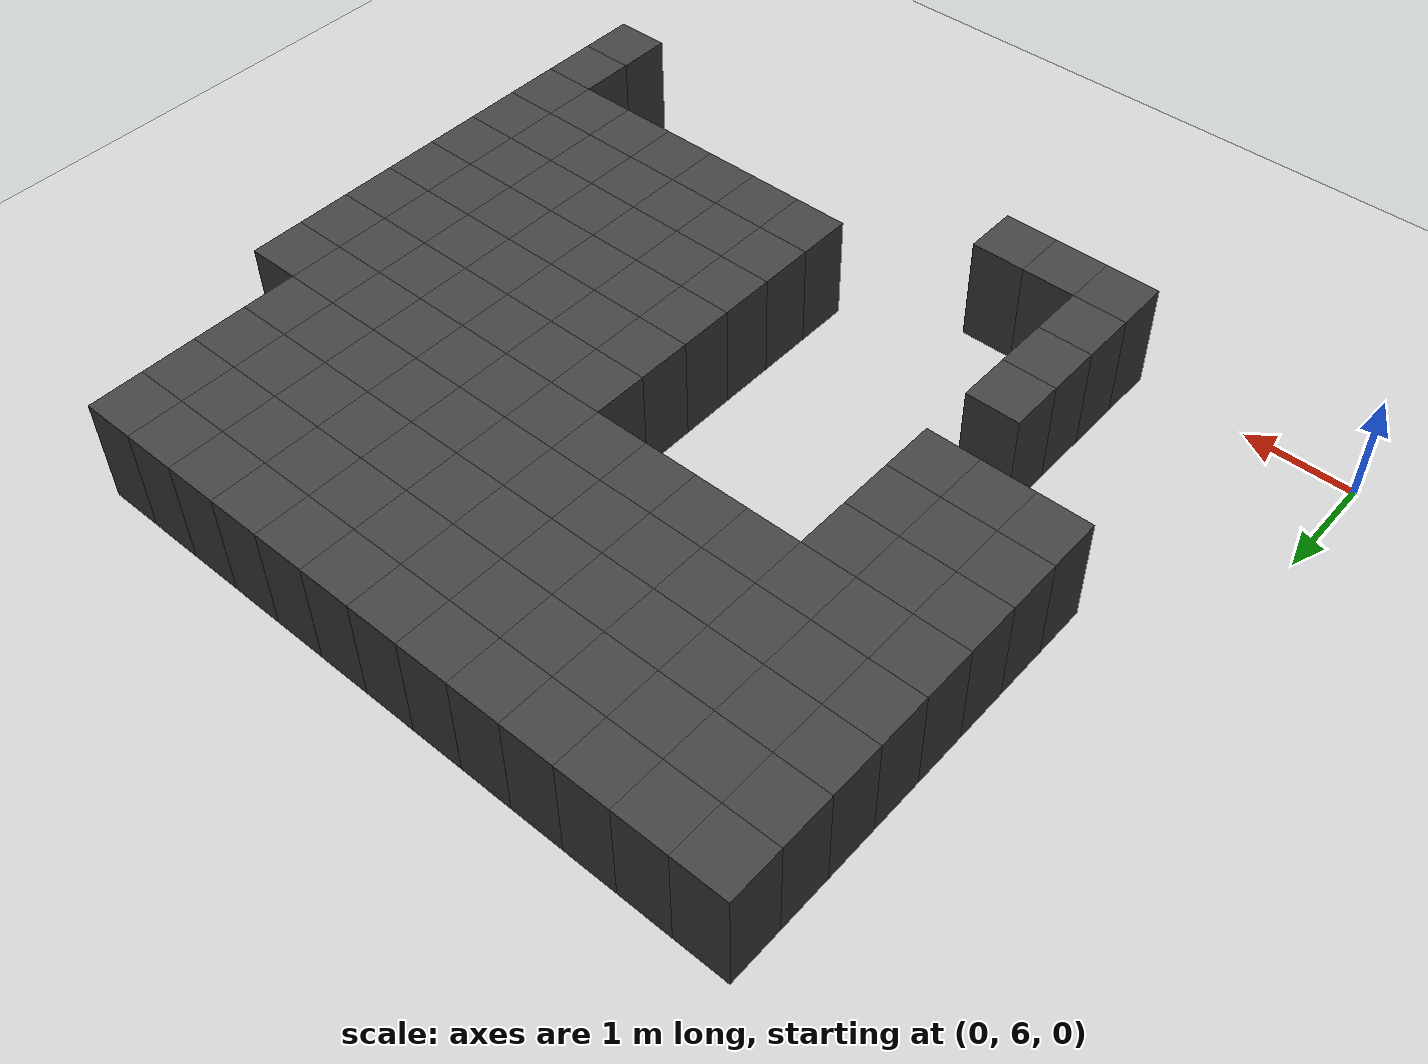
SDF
<sdf version="1.7">
 <world name="map_14668">
  <model name="ground_plane">
   <static>true</static>
   <link name="link">
    <collision name="collision">
     <geometry><plane><normal>0 0 1</normal><size>200 200</size></plane></geometry>
    </collision>
    <visual name="visual">
     <geometry><plane><normal>0 0 1</normal><size>200 200</size></plane></geometry>
     <material><ambient>0.8 0.8 0.8 1</ambient><diffuse>0.8 0.8 0.8 1</diffuse></material>
    </visual>
   </link>
  </model>
  <model name="maze_environment">
   <static>true</static>
   <link name="wall_27">
    <pose>1.250 12.250 0.500 0 0 0</pose>
    <collision name="col"><geometry><box><size>0.5 0.5 1.0</size></box></geometry></collision>
    <visual name="vis">
     <geometry><box><size>0.5 0.5 1.0</size></box></geometry>
     <material><ambient>0.15 0.15 0.15 1</ambient><diffuse>0.25 0.25 0.25 1</diffuse></material>
    </visual>
   </link>
   <link name="wall_28">
    <pose>1.750 12.250 0.500 0 0 0</pose>
    <collision name="col"><geometry><box><size>0.5 0.5 1.0</size></box></geometry></collision>
    <visual name="vis">
     <geometry><box><size>0.5 0.5 1.0</size></box></geometry>
     <material><ambient>0.15 0.15 0.15 1</ambient><diffuse>0.25 0.25 0.25 1</diffuse></material>
    </visual>
   </link>
   <link name="wall_29">
    <pose>2.250 12.250 0.500 0 0 0</pose>
    <collision name="col"><geometry><box><size>0.5 0.5 1.0</size></box></geometry></collision>
    <visual name="vis">
     <geometry><box><size>0.5 0.5 1.0</size></box></geometry>
     <material><ambient>0.15 0.15 0.15 1</ambient><diffuse>0.25 0.25 0.25 1</diffuse></material>
    </visual>
   </link>
   <link name="wall_30">
    <pose>2.750 12.250 0.500 0 0 0</pose>
    <collision name="col"><geometry><box><size>0.5 0.5 1.0</size></box></geometry></collision>
    <visual name="vis">
     <geometry><box><size>0.5 0.5 1.0</size></box></geometry>
     <material><ambient>0.15 0.15 0.15 1</ambient><diffuse>0.25 0.25 0.25 1</diffuse></material>
    </visual>
   </link>
   <link name="wall_31">
    <pose>3.250 12.250 0.500 0 0 0</pose>
    <collision name="col"><geometry><box><size>0.5 0.5 1.0</size></box></geometry></collision>
    <visual name="vis">
     <geometry><box><size>0.5 0.5 1.0</size></box></geometry>
     <material><ambient>0.15 0.15 0.15 1</ambient><diffuse>0.25 0.25 0.25 1</diffuse></material>
    </visual>
   </link>
   <link name="wall_32">
    <pose>3.750 12.250 0.500 0 0 0</pose>
    <collision name="col"><geometry><box><size>0.5 0.5 1.0</size></box></geometry></collision>
    <visual name="vis">
     <geometry><box><size>0.5 0.5 1.0</size></box></geometry>
     <material><ambient>0.15 0.15 0.15 1</ambient><diffuse>0.25 0.25 0.25 1</diffuse></material>
    </visual>
   </link>
   <link name="wall_33">
    <pose>4.250 12.250 0.500 0 0 0</pose>
    <collision name="col"><geometry><box><size>0.5 0.5 1.0</size></box></geometry></collision>
    <visual name="vis">
     <geometry><box><size>0.5 0.5 1.0</size></box></geometry>
     <material><ambient>0.15 0.15 0.15 1</ambient><diffuse>0.25 0.25 0.25 1</diffuse></material>
    </visual>
   </link>
   <link name="wall_34">
    <pose>4.750 12.250 0.500 0 0 0</pose>
    <collision name="col"><geometry><box><size>0.5 0.5 1.0</size></box></geometry></collision>
    <visual name="vis">
     <geometry><box><size>0.5 0.5 1.0</size></box></geometry>
     <material><ambient>0.15 0.15 0.15 1</ambient><diffuse>0.25 0.25 0.25 1</diffuse></material>
    </visual>
   </link>
   <link name="wall_35">
    <pose>5.250 12.250 0.500 0 0 0</pose>
    <collision name="col"><geometry><box><size>0.5 0.5 1.0</size></box></geometry></collision>
    <visual name="vis">
     <geometry><box><size>0.5 0.5 1.0</size></box></geometry>
     <material><ambient>0.15 0.15 0.15 1</ambient><diffuse>0.25 0.25 0.25 1</diffuse></material>
    </visual>
   </link>
   <link name="wall_36">
    <pose>5.750 12.250 0.500 0 0 0</pose>
    <collision name="col"><geometry><box><size>0.5 0.5 1.0</size></box></geometry></collision>
    <visual name="vis">
     <geometry><box><size>0.5 0.5 1.0</size></box></geometry>
     <material><ambient>0.15 0.15 0.15 1</ambient><diffuse>0.25 0.25 0.25 1</diffuse></material>
    </visual>
   </link>
   <link name="wall_37">
    <pose>6.250 12.250 0.500 0 0 0</pose>
    <collision name="col"><geometry><box><size>0.5 0.5 1.0</size></box></geometry></collision>
    <visual name="vis">
     <geometry><box><size>0.5 0.5 1.0</size></box></geometry>
     <material><ambient>0.15 0.15 0.15 1</ambient><diffuse>0.25 0.25 0.25 1</diffuse></material>
    </visual>
   </link>
   <link name="wall_38">
    <pose>6.750 12.250 0.500 0 0 0</pose>
    <collision name="col"><geometry><box><size>0.5 0.5 1.0</size></box></geometry></collision>
    <visual name="vis">
     <geometry><box><size>0.5 0.5 1.0</size></box></geometry>
     <material><ambient>0.15 0.15 0.15 1</ambient><diffuse>0.25 0.25 0.25 1</diffuse></material>
    </visual>
   </link>
   <link name="wall_39">
    <pose>7.250 12.250 0.500 0 0 0</pose>
    <collision name="col"><geometry><box><size>0.5 0.5 1.0</size></box></geometry></collision>
    <visual name="vis">
     <geometry><box><size>0.5 0.5 1.0</size></box></geometry>
     <material><ambient>0.15 0.15 0.15 1</ambient><diffuse>0.25 0.25 0.25 1</diffuse></material>
    </visual>
   </link>
   <link name="wall_74">
    <pose>1.250 11.750 0.500 0 0 0</pose>
    <collision name="col"><geometry><box><size>0.5 0.5 1.0</size></box></geometry></collision>
    <visual name="vis">
     <geometry><box><size>0.5 0.5 1.0</size></box></geometry>
     <material><ambient>0.15 0.15 0.15 1</ambient><diffuse>0.25 0.25 0.25 1</diffuse></material>
    </visual>
   </link>
   <link name="wall_75">
    <pose>1.750 11.750 0.500 0 0 0</pose>
    <collision name="col"><geometry><box><size>0.5 0.5 1.0</size></box></geometry></collision>
    <visual name="vis">
     <geometry><box><size>0.5 0.5 1.0</size></box></geometry>
     <material><ambient>0.15 0.15 0.15 1</ambient><diffuse>0.25 0.25 0.25 1</diffuse></material>
    </visual>
   </link>
   <link name="wall_76">
    <pose>2.250 11.750 0.500 0 0 0</pose>
    <collision name="col"><geometry><box><size>0.5 0.5 1.0</size></box></geometry></collision>
    <visual name="vis">
     <geometry><box><size>0.5 0.5 1.0</size></box></geometry>
     <material><ambient>0.15 0.15 0.15 1</ambient><diffuse>0.25 0.25 0.25 1</diffuse></material>
    </visual>
   </link>
   <link name="wall_77">
    <pose>2.750 11.750 0.500 0 0 0</pose>
    <collision name="col"><geometry><box><size>0.5 0.5 1.0</size></box></geometry></collision>
    <visual name="vis">
     <geometry><box><size>0.5 0.5 1.0</size></box></geometry>
     <material><ambient>0.15 0.15 0.15 1</ambient><diffuse>0.25 0.25 0.25 1</diffuse></material>
    </visual>
   </link>
   <link name="wall_78">
    <pose>3.250 11.750 0.500 0 0 0</pose>
    <collision name="col"><geometry><box><size>0.5 0.5 1.0</size></box></geometry></collision>
    <visual name="vis">
     <geometry><box><size>0.5 0.5 1.0</size></box></geometry>
     <material><ambient>0.15 0.15 0.15 1</ambient><diffuse>0.25 0.25 0.25 1</diffuse></material>
    </visual>
   </link>
   <link name="wall_79">
    <pose>3.750 11.750 0.500 0 0 0</pose>
    <collision name="col"><geometry><box><size>0.5 0.5 1.0</size></box></geometry></collision>
    <visual name="vis">
     <geometry><box><size>0.5 0.5 1.0</size></box></geometry>
     <material><ambient>0.15 0.15 0.15 1</ambient><diffuse>0.25 0.25 0.25 1</diffuse></material>
    </visual>
   </link>
   <link name="wall_80">
    <pose>4.250 11.750 0.500 0 0 0</pose>
    <collision name="col"><geometry><box><size>0.5 0.5 1.0</size></box></geometry></collision>
    <visual name="vis">
     <geometry><box><size>0.5 0.5 1.0</size></box></geometry>
     <material><ambient>0.15 0.15 0.15 1</ambient><diffuse>0.25 0.25 0.25 1</diffuse></material>
    </visual>
   </link>
   <link name="wall_81">
    <pose>4.750 11.750 0.500 0 0 0</pose>
    <collision name="col"><geometry><box><size>0.5 0.5 1.0</size></box></geometry></collision>
    <visual name="vis">
     <geometry><box><size>0.5 0.5 1.0</size></box></geometry>
     <material><ambient>0.15 0.15 0.15 1</ambient><diffuse>0.25 0.25 0.25 1</diffuse></material>
    </visual>
   </link>
   <link name="wall_82">
    <pose>5.250 11.750 0.500 0 0 0</pose>
    <collision name="col"><geometry><box><size>0.5 0.5 1.0</size></box></geometry></collision>
    <visual name="vis">
     <geometry><box><size>0.5 0.5 1.0</size></box></geometry>
     <material><ambient>0.15 0.15 0.15 1</ambient><diffuse>0.25 0.25 0.25 1</diffuse></material>
    </visual>
   </link>
   <link name="wall_83">
    <pose>5.750 11.750 0.500 0 0 0</pose>
    <collision name="col"><geometry><box><size>0.5 0.5 1.0</size></box></geometry></collision>
    <visual name="vis">
     <geometry><box><size>0.5 0.5 1.0</size></box></geometry>
     <material><ambient>0.15 0.15 0.15 1</ambient><diffuse>0.25 0.25 0.25 1</diffuse></material>
    </visual>
   </link>
   <link name="wall_84">
    <pose>6.250 11.750 0.500 0 0 0</pose>
    <collision name="col"><geometry><box><size>0.5 0.5 1.0</size></box></geometry></collision>
    <visual name="vis">
     <geometry><box><size>0.5 0.5 1.0</size></box></geometry>
     <material><ambient>0.15 0.15 0.15 1</ambient><diffuse>0.25 0.25 0.25 1</diffuse></material>
    </visual>
   </link>
   <link name="wall_85">
    <pose>6.750 11.750 0.500 0 0 0</pose>
    <collision name="col"><geometry><box><size>0.5 0.5 1.0</size></box></geometry></collision>
    <visual name="vis">
     <geometry><box><size>0.5 0.5 1.0</size></box></geometry>
     <material><ambient>0.15 0.15 0.15 1</ambient><diffuse>0.25 0.25 0.25 1</diffuse></material>
    </visual>
   </link>
   <link name="wall_86">
    <pose>7.250 11.750 0.500 0 0 0</pose>
    <collision name="col"><geometry><box><size>0.5 0.5 1.0</size></box></geometry></collision>
    <visual name="vis">
     <geometry><box><size>0.5 0.5 1.0</size></box></geometry>
     <material><ambient>0.15 0.15 0.15 1</ambient><diffuse>0.25 0.25 0.25 1</diffuse></material>
    </visual>
   </link>
   <link name="wall_121">
    <pose>1.250 11.250 0.500 0 0 0</pose>
    <collision name="col"><geometry><box><size>0.5 0.5 1.0</size></box></geometry></collision>
    <visual name="vis">
     <geometry><box><size>0.5 0.5 1.0</size></box></geometry>
     <material><ambient>0.15 0.15 0.15 1</ambient><diffuse>0.25 0.25 0.25 1</diffuse></material>
    </visual>
   </link>
   <link name="wall_122">
    <pose>1.750 11.250 0.500 0 0 0</pose>
    <collision name="col"><geometry><box><size>0.5 0.5 1.0</size></box></geometry></collision>
    <visual name="vis">
     <geometry><box><size>0.5 0.5 1.0</size></box></geometry>
     <material><ambient>0.15 0.15 0.15 1</ambient><diffuse>0.25 0.25 0.25 1</diffuse></material>
    </visual>
   </link>
   <link name="wall_123">
    <pose>2.250 11.250 0.500 0 0 0</pose>
    <collision name="col"><geometry><box><size>0.5 0.5 1.0</size></box></geometry></collision>
    <visual name="vis">
     <geometry><box><size>0.5 0.5 1.0</size></box></geometry>
     <material><ambient>0.15 0.15 0.15 1</ambient><diffuse>0.25 0.25 0.25 1</diffuse></material>
    </visual>
   </link>
   <link name="wall_124">
    <pose>2.750 11.250 0.500 0 0 0</pose>
    <collision name="col"><geometry><box><size>0.5 0.5 1.0</size></box></geometry></collision>
    <visual name="vis">
     <geometry><box><size>0.5 0.5 1.0</size></box></geometry>
     <material><ambient>0.15 0.15 0.15 1</ambient><diffuse>0.25 0.25 0.25 1</diffuse></material>
    </visual>
   </link>
   <link name="wall_125">
    <pose>3.250 11.250 0.500 0 0 0</pose>
    <collision name="col"><geometry><box><size>0.5 0.5 1.0</size></box></geometry></collision>
    <visual name="vis">
     <geometry><box><size>0.5 0.5 1.0</size></box></geometry>
     <material><ambient>0.15 0.15 0.15 1</ambient><diffuse>0.25 0.25 0.25 1</diffuse></material>
    </visual>
   </link>
   <link name="wall_126">
    <pose>3.750 11.250 0.500 0 0 0</pose>
    <collision name="col"><geometry><box><size>0.5 0.5 1.0</size></box></geometry></collision>
    <visual name="vis">
     <geometry><box><size>0.5 0.5 1.0</size></box></geometry>
     <material><ambient>0.15 0.15 0.15 1</ambient><diffuse>0.25 0.25 0.25 1</diffuse></material>
    </visual>
   </link>
   <link name="wall_127">
    <pose>4.250 11.250 0.500 0 0 0</pose>
    <collision name="col"><geometry><box><size>0.5 0.5 1.0</size></box></geometry></collision>
    <visual name="vis">
     <geometry><box><size>0.5 0.5 1.0</size></box></geometry>
     <material><ambient>0.15 0.15 0.15 1</ambient><diffuse>0.25 0.25 0.25 1</diffuse></material>
    </visual>
   </link>
   <link name="wall_128">
    <pose>4.750 11.250 0.500 0 0 0</pose>
    <collision name="col"><geometry><box><size>0.5 0.5 1.0</size></box></geometry></collision>
    <visual name="vis">
     <geometry><box><size>0.5 0.5 1.0</size></box></geometry>
     <material><ambient>0.15 0.15 0.15 1</ambient><diffuse>0.25 0.25 0.25 1</diffuse></material>
    </visual>
   </link>
   <link name="wall_129">
    <pose>5.250 11.250 0.500 0 0 0</pose>
    <collision name="col"><geometry><box><size>0.5 0.5 1.0</size></box></geometry></collision>
    <visual name="vis">
     <geometry><box><size>0.5 0.5 1.0</size></box></geometry>
     <material><ambient>0.15 0.15 0.15 1</ambient><diffuse>0.25 0.25 0.25 1</diffuse></material>
    </visual>
   </link>
   <link name="wall_130">
    <pose>5.750 11.250 0.500 0 0 0</pose>
    <collision name="col"><geometry><box><size>0.5 0.5 1.0</size></box></geometry></collision>
    <visual name="vis">
     <geometry><box><size>0.5 0.5 1.0</size></box></geometry>
     <material><ambient>0.15 0.15 0.15 1</ambient><diffuse>0.25 0.25 0.25 1</diffuse></material>
    </visual>
   </link>
   <link name="wall_131">
    <pose>6.250 11.250 0.500 0 0 0</pose>
    <collision name="col"><geometry><box><size>0.5 0.5 1.0</size></box></geometry></collision>
    <visual name="vis">
     <geometry><box><size>0.5 0.5 1.0</size></box></geometry>
     <material><ambient>0.15 0.15 0.15 1</ambient><diffuse>0.25 0.25 0.25 1</diffuse></material>
    </visual>
   </link>
   <link name="wall_132">
    <pose>6.750 11.250 0.500 0 0 0</pose>
    <collision name="col"><geometry><box><size>0.5 0.5 1.0</size></box></geometry></collision>
    <visual name="vis">
     <geometry><box><size>0.5 0.5 1.0</size></box></geometry>
     <material><ambient>0.15 0.15 0.15 1</ambient><diffuse>0.25 0.25 0.25 1</diffuse></material>
    </visual>
   </link>
   <link name="wall_133">
    <pose>7.250 11.250 0.500 0 0 0</pose>
    <collision name="col"><geometry><box><size>0.5 0.5 1.0</size></box></geometry></collision>
    <visual name="vis">
     <geometry><box><size>0.5 0.5 1.0</size></box></geometry>
     <material><ambient>0.15 0.15 0.15 1</ambient><diffuse>0.25 0.25 0.25 1</diffuse></material>
    </visual>
   </link>
   <link name="wall_160">
    <pose>1.250 10.750 0.500 0 0 0</pose>
    <collision name="col"><geometry><box><size>0.5 0.5 1.0</size></box></geometry></collision>
    <visual name="vis">
     <geometry><box><size>0.5 0.5 1.0</size></box></geometry>
     <material><ambient>0.15 0.15 0.15 1</ambient><diffuse>0.25 0.25 0.25 1</diffuse></material>
    </visual>
   </link>
   <link name="wall_161">
    <pose>1.750 10.750 0.500 0 0 0</pose>
    <collision name="col"><geometry><box><size>0.5 0.5 1.0</size></box></geometry></collision>
    <visual name="vis">
     <geometry><box><size>0.5 0.5 1.0</size></box></geometry>
     <material><ambient>0.15 0.15 0.15 1</ambient><diffuse>0.25 0.25 0.25 1</diffuse></material>
    </visual>
   </link>
   <link name="wall_162">
    <pose>2.250 10.750 0.500 0 0 0</pose>
    <collision name="col"><geometry><box><size>0.5 0.5 1.0</size></box></geometry></collision>
    <visual name="vis">
     <geometry><box><size>0.5 0.5 1.0</size></box></geometry>
     <material><ambient>0.15 0.15 0.15 1</ambient><diffuse>0.25 0.25 0.25 1</diffuse></material>
    </visual>
   </link>
   <link name="wall_163">
    <pose>2.750 10.750 0.500 0 0 0</pose>
    <collision name="col"><geometry><box><size>0.5 0.5 1.0</size></box></geometry></collision>
    <visual name="vis">
     <geometry><box><size>0.5 0.5 1.0</size></box></geometry>
     <material><ambient>0.15 0.15 0.15 1</ambient><diffuse>0.25 0.25 0.25 1</diffuse></material>
    </visual>
   </link>
   <link name="wall_164">
    <pose>3.250 10.750 0.500 0 0 0</pose>
    <collision name="col"><geometry><box><size>0.5 0.5 1.0</size></box></geometry></collision>
    <visual name="vis">
     <geometry><box><size>0.5 0.5 1.0</size></box></geometry>
     <material><ambient>0.15 0.15 0.15 1</ambient><diffuse>0.25 0.25 0.25 1</diffuse></material>
    </visual>
   </link>
   <link name="wall_165">
    <pose>3.750 10.750 0.500 0 0 0</pose>
    <collision name="col"><geometry><box><size>0.5 0.5 1.0</size></box></geometry></collision>
    <visual name="vis">
     <geometry><box><size>0.5 0.5 1.0</size></box></geometry>
     <material><ambient>0.15 0.15 0.15 1</ambient><diffuse>0.25 0.25 0.25 1</diffuse></material>
    </visual>
   </link>
   <link name="wall_166">
    <pose>4.250 10.750 0.500 0 0 0</pose>
    <collision name="col"><geometry><box><size>0.5 0.5 1.0</size></box></geometry></collision>
    <visual name="vis">
     <geometry><box><size>0.5 0.5 1.0</size></box></geometry>
     <material><ambient>0.15 0.15 0.15 1</ambient><diffuse>0.25 0.25 0.25 1</diffuse></material>
    </visual>
   </link>
   <link name="wall_167">
    <pose>4.750 10.750 0.500 0 0 0</pose>
    <collision name="col"><geometry><box><size>0.5 0.5 1.0</size></box></geometry></collision>
    <visual name="vis">
     <geometry><box><size>0.5 0.5 1.0</size></box></geometry>
     <material><ambient>0.15 0.15 0.15 1</ambient><diffuse>0.25 0.25 0.25 1</diffuse></material>
    </visual>
   </link>
   <link name="wall_168">
    <pose>5.250 10.750 0.500 0 0 0</pose>
    <collision name="col"><geometry><box><size>0.5 0.5 1.0</size></box></geometry></collision>
    <visual name="vis">
     <geometry><box><size>0.5 0.5 1.0</size></box></geometry>
     <material><ambient>0.15 0.15 0.15 1</ambient><diffuse>0.25 0.25 0.25 1</diffuse></material>
    </visual>
   </link>
   <link name="wall_169">
    <pose>5.750 10.750 0.500 0 0 0</pose>
    <collision name="col"><geometry><box><size>0.5 0.5 1.0</size></box></geometry></collision>
    <visual name="vis">
     <geometry><box><size>0.5 0.5 1.0</size></box></geometry>
     <material><ambient>0.15 0.15 0.15 1</ambient><diffuse>0.25 0.25 0.25 1</diffuse></material>
    </visual>
   </link>
   <link name="wall_170">
    <pose>6.250 10.750 0.500 0 0 0</pose>
    <collision name="col"><geometry><box><size>0.5 0.5 1.0</size></box></geometry></collision>
    <visual name="vis">
     <geometry><box><size>0.5 0.5 1.0</size></box></geometry>
     <material><ambient>0.15 0.15 0.15 1</ambient><diffuse>0.25 0.25 0.25 1</diffuse></material>
    </visual>
   </link>
   <link name="wall_171">
    <pose>6.750 10.750 0.500 0 0 0</pose>
    <collision name="col"><geometry><box><size>0.5 0.5 1.0</size></box></geometry></collision>
    <visual name="vis">
     <geometry><box><size>0.5 0.5 1.0</size></box></geometry>
     <material><ambient>0.15 0.15 0.15 1</ambient><diffuse>0.25 0.25 0.25 1</diffuse></material>
    </visual>
   </link>
   <link name="wall_172">
    <pose>7.250 10.750 0.500 0 0 0</pose>
    <collision name="col"><geometry><box><size>0.5 0.5 1.0</size></box></geometry></collision>
    <visual name="vis">
     <geometry><box><size>0.5 0.5 1.0</size></box></geometry>
     <material><ambient>0.15 0.15 0.15 1</ambient><diffuse>0.25 0.25 0.25 1</diffuse></material>
    </visual>
   </link>
   <link name="wall_201">
    <pose>1.250 10.250 0.500 0 0 0</pose>
    <collision name="col"><geometry><box><size>0.5 0.5 1.0</size></box></geometry></collision>
    <visual name="vis">
     <geometry><box><size>0.5 0.5 1.0</size></box></geometry>
     <material><ambient>0.15 0.15 0.15 1</ambient><diffuse>0.25 0.25 0.25 1</diffuse></material>
    </visual>
   </link>
   <link name="wall_202">
    <pose>1.750 10.250 0.500 0 0 0</pose>
    <collision name="col"><geometry><box><size>0.5 0.5 1.0</size></box></geometry></collision>
    <visual name="vis">
     <geometry><box><size>0.5 0.5 1.0</size></box></geometry>
     <material><ambient>0.15 0.15 0.15 1</ambient><diffuse>0.25 0.25 0.25 1</diffuse></material>
    </visual>
   </link>
   <link name="wall_203">
    <pose>2.250 10.250 0.500 0 0 0</pose>
    <collision name="col"><geometry><box><size>0.5 0.5 1.0</size></box></geometry></collision>
    <visual name="vis">
     <geometry><box><size>0.5 0.5 1.0</size></box></geometry>
     <material><ambient>0.15 0.15 0.15 1</ambient><diffuse>0.25 0.25 0.25 1</diffuse></material>
    </visual>
   </link>
   <link name="wall_204">
    <pose>2.750 10.250 0.500 0 0 0</pose>
    <collision name="col"><geometry><box><size>0.5 0.5 1.0</size></box></geometry></collision>
    <visual name="vis">
     <geometry><box><size>0.5 0.5 1.0</size></box></geometry>
     <material><ambient>0.15 0.15 0.15 1</ambient><diffuse>0.25 0.25 0.25 1</diffuse></material>
    </visual>
   </link>
   <link name="wall_205">
    <pose>3.250 10.250 0.500 0 0 0</pose>
    <collision name="col"><geometry><box><size>0.5 0.5 1.0</size></box></geometry></collision>
    <visual name="vis">
     <geometry><box><size>0.5 0.5 1.0</size></box></geometry>
     <material><ambient>0.15 0.15 0.15 1</ambient><diffuse>0.25 0.25 0.25 1</diffuse></material>
    </visual>
   </link>
   <link name="wall_206">
    <pose>3.750 10.250 0.500 0 0 0</pose>
    <collision name="col"><geometry><box><size>0.5 0.5 1.0</size></box></geometry></collision>
    <visual name="vis">
     <geometry><box><size>0.5 0.5 1.0</size></box></geometry>
     <material><ambient>0.15 0.15 0.15 1</ambient><diffuse>0.25 0.25 0.25 1</diffuse></material>
    </visual>
   </link>
   <link name="wall_207">
    <pose>4.250 10.250 0.500 0 0 0</pose>
    <collision name="col"><geometry><box><size>0.5 0.5 1.0</size></box></geometry></collision>
    <visual name="vis">
     <geometry><box><size>0.5 0.5 1.0</size></box></geometry>
     <material><ambient>0.15 0.15 0.15 1</ambient><diffuse>0.25 0.25 0.25 1</diffuse></material>
    </visual>
   </link>
   <link name="wall_208">
    <pose>4.750 10.250 0.500 0 0 0</pose>
    <collision name="col"><geometry><box><size>0.5 0.5 1.0</size></box></geometry></collision>
    <visual name="vis">
     <geometry><box><size>0.5 0.5 1.0</size></box></geometry>
     <material><ambient>0.15 0.15 0.15 1</ambient><diffuse>0.25 0.25 0.25 1</diffuse></material>
    </visual>
   </link>
   <link name="wall_209">
    <pose>5.250 10.250 0.500 0 0 0</pose>
    <collision name="col"><geometry><box><size>0.5 0.5 1.0</size></box></geometry></collision>
    <visual name="vis">
     <geometry><box><size>0.5 0.5 1.0</size></box></geometry>
     <material><ambient>0.15 0.15 0.15 1</ambient><diffuse>0.25 0.25 0.25 1</diffuse></material>
    </visual>
   </link>
   <link name="wall_210">
    <pose>5.750 10.250 0.500 0 0 0</pose>
    <collision name="col"><geometry><box><size>0.5 0.5 1.0</size></box></geometry></collision>
    <visual name="vis">
     <geometry><box><size>0.5 0.5 1.0</size></box></geometry>
     <material><ambient>0.15 0.15 0.15 1</ambient><diffuse>0.25 0.25 0.25 1</diffuse></material>
    </visual>
   </link>
   <link name="wall_211">
    <pose>6.250 10.250 0.500 0 0 0</pose>
    <collision name="col"><geometry><box><size>0.5 0.5 1.0</size></box></geometry></collision>
    <visual name="vis">
     <geometry><box><size>0.5 0.5 1.0</size></box></geometry>
     <material><ambient>0.15 0.15 0.15 1</ambient><diffuse>0.25 0.25 0.25 1</diffuse></material>
    </visual>
   </link>
   <link name="wall_212">
    <pose>6.750 10.250 0.500 0 0 0</pose>
    <collision name="col"><geometry><box><size>0.5 0.5 1.0</size></box></geometry></collision>
    <visual name="vis">
     <geometry><box><size>0.5 0.5 1.0</size></box></geometry>
     <material><ambient>0.15 0.15 0.15 1</ambient><diffuse>0.25 0.25 0.25 1</diffuse></material>
    </visual>
   </link>
   <link name="wall_213">
    <pose>7.250 10.250 0.500 0 0 0</pose>
    <collision name="col"><geometry><box><size>0.5 0.5 1.0</size></box></geometry></collision>
    <visual name="vis">
     <geometry><box><size>0.5 0.5 1.0</size></box></geometry>
     <material><ambient>0.15 0.15 0.15 1</ambient><diffuse>0.25 0.25 0.25 1</diffuse></material>
    </visual>
   </link>
   <link name="wall_214">
    <pose>7.750 10.250 0.500 0 0 0</pose>
    <collision name="col"><geometry><box><size>0.5 0.5 1.0</size></box></geometry></collision>
    <visual name="vis">
     <geometry><box><size>0.5 0.5 1.0</size></box></geometry>
     <material><ambient>0.15 0.15 0.15 1</ambient><diffuse>0.25 0.25 0.25 1</diffuse></material>
    </visual>
   </link>
   <link name="wall_232">
    <pose>1.250 9.750 0.500 0 0 0</pose>
    <collision name="col"><geometry><box><size>0.5 0.5 1.0</size></box></geometry></collision>
    <visual name="vis">
     <geometry><box><size>0.5 0.5 1.0</size></box></geometry>
     <material><ambient>0.15 0.15 0.15 1</ambient><diffuse>0.25 0.25 0.25 1</diffuse></material>
    </visual>
   </link>
   <link name="wall_233">
    <pose>1.750 9.750 0.500 0 0 0</pose>
    <collision name="col"><geometry><box><size>0.5 0.5 1.0</size></box></geometry></collision>
    <visual name="vis">
     <geometry><box><size>0.5 0.5 1.0</size></box></geometry>
     <material><ambient>0.15 0.15 0.15 1</ambient><diffuse>0.25 0.25 0.25 1</diffuse></material>
    </visual>
   </link>
   <link name="wall_234">
    <pose>2.250 9.750 0.500 0 0 0</pose>
    <collision name="col"><geometry><box><size>0.5 0.5 1.0</size></box></geometry></collision>
    <visual name="vis">
     <geometry><box><size>0.5 0.5 1.0</size></box></geometry>
     <material><ambient>0.15 0.15 0.15 1</ambient><diffuse>0.25 0.25 0.25 1</diffuse></material>
    </visual>
   </link>
   <link name="wall_235">
    <pose>4.750 9.750 0.500 0 0 0</pose>
    <collision name="col"><geometry><box><size>0.5 0.5 1.0</size></box></geometry></collision>
    <visual name="vis">
     <geometry><box><size>0.5 0.5 1.0</size></box></geometry>
     <material><ambient>0.15 0.15 0.15 1</ambient><diffuse>0.25 0.25 0.25 1</diffuse></material>
    </visual>
   </link>
   <link name="wall_236">
    <pose>5.250 9.750 0.500 0 0 0</pose>
    <collision name="col"><geometry><box><size>0.5 0.5 1.0</size></box></geometry></collision>
    <visual name="vis">
     <geometry><box><size>0.5 0.5 1.0</size></box></geometry>
     <material><ambient>0.15 0.15 0.15 1</ambient><diffuse>0.25 0.25 0.25 1</diffuse></material>
    </visual>
   </link>
   <link name="wall_237">
    <pose>5.750 9.750 0.500 0 0 0</pose>
    <collision name="col"><geometry><box><size>0.5 0.5 1.0</size></box></geometry></collision>
    <visual name="vis">
     <geometry><box><size>0.5 0.5 1.0</size></box></geometry>
     <material><ambient>0.15 0.15 0.15 1</ambient><diffuse>0.25 0.25 0.25 1</diffuse></material>
    </visual>
   </link>
   <link name="wall_238">
    <pose>6.250 9.750 0.500 0 0 0</pose>
    <collision name="col"><geometry><box><size>0.5 0.5 1.0</size></box></geometry></collision>
    <visual name="vis">
     <geometry><box><size>0.5 0.5 1.0</size></box></geometry>
     <material><ambient>0.15 0.15 0.15 1</ambient><diffuse>0.25 0.25 0.25 1</diffuse></material>
    </visual>
   </link>
   <link name="wall_239">
    <pose>6.750 9.750 0.500 0 0 0</pose>
    <collision name="col"><geometry><box><size>0.5 0.5 1.0</size></box></geometry></collision>
    <visual name="vis">
     <geometry><box><size>0.5 0.5 1.0</size></box></geometry>
     <material><ambient>0.15 0.15 0.15 1</ambient><diffuse>0.25 0.25 0.25 1</diffuse></material>
    </visual>
   </link>
   <link name="wall_240">
    <pose>7.250 9.750 0.500 0 0 0</pose>
    <collision name="col"><geometry><box><size>0.5 0.5 1.0</size></box></geometry></collision>
    <visual name="vis">
     <geometry><box><size>0.5 0.5 1.0</size></box></geometry>
     <material><ambient>0.15 0.15 0.15 1</ambient><diffuse>0.25 0.25 0.25 1</diffuse></material>
    </visual>
   </link>
   <link name="wall_241">
    <pose>7.750 9.750 0.500 0 0 0</pose>
    <collision name="col"><geometry><box><size>0.5 0.5 1.0</size></box></geometry></collision>
    <visual name="vis">
     <geometry><box><size>0.5 0.5 1.0</size></box></geometry>
     <material><ambient>0.15 0.15 0.15 1</ambient><diffuse>0.25 0.25 0.25 1</diffuse></material>
    </visual>
   </link>
   <link name="wall_262">
    <pose>1.250 9.250 0.500 0 0 0</pose>
    <collision name="col"><geometry><box><size>0.5 0.5 1.0</size></box></geometry></collision>
    <visual name="vis">
     <geometry><box><size>0.5 0.5 1.0</size></box></geometry>
     <material><ambient>0.15 0.15 0.15 1</ambient><diffuse>0.25 0.25 0.25 1</diffuse></material>
    </visual>
   </link>
   <link name="wall_263">
    <pose>1.750 9.250 0.500 0 0 0</pose>
    <collision name="col"><geometry><box><size>0.5 0.5 1.0</size></box></geometry></collision>
    <visual name="vis">
     <geometry><box><size>0.5 0.5 1.0</size></box></geometry>
     <material><ambient>0.15 0.15 0.15 1</ambient><diffuse>0.25 0.25 0.25 1</diffuse></material>
    </visual>
   </link>
   <link name="wall_264">
    <pose>2.250 9.250 0.500 0 0 0</pose>
    <collision name="col"><geometry><box><size>0.5 0.5 1.0</size></box></geometry></collision>
    <visual name="vis">
     <geometry><box><size>0.5 0.5 1.0</size></box></geometry>
     <material><ambient>0.15 0.15 0.15 1</ambient><diffuse>0.25 0.25 0.25 1</diffuse></material>
    </visual>
   </link>
   <link name="wall_265">
    <pose>4.750 9.250 0.500 0 0 0</pose>
    <collision name="col"><geometry><box><size>0.5 0.5 1.0</size></box></geometry></collision>
    <visual name="vis">
     <geometry><box><size>0.5 0.5 1.0</size></box></geometry>
     <material><ambient>0.15 0.15 0.15 1</ambient><diffuse>0.25 0.25 0.25 1</diffuse></material>
    </visual>
   </link>
   <link name="wall_266">
    <pose>5.250 9.250 0.500 0 0 0</pose>
    <collision name="col"><geometry><box><size>0.5 0.5 1.0</size></box></geometry></collision>
    <visual name="vis">
     <geometry><box><size>0.5 0.5 1.0</size></box></geometry>
     <material><ambient>0.15 0.15 0.15 1</ambient><diffuse>0.25 0.25 0.25 1</diffuse></material>
    </visual>
   </link>
   <link name="wall_267">
    <pose>5.750 9.250 0.500 0 0 0</pose>
    <collision name="col"><geometry><box><size>0.5 0.5 1.0</size></box></geometry></collision>
    <visual name="vis">
     <geometry><box><size>0.5 0.5 1.0</size></box></geometry>
     <material><ambient>0.15 0.15 0.15 1</ambient><diffuse>0.25 0.25 0.25 1</diffuse></material>
    </visual>
   </link>
   <link name="wall_268">
    <pose>6.250 9.250 0.500 0 0 0</pose>
    <collision name="col"><geometry><box><size>0.5 0.5 1.0</size></box></geometry></collision>
    <visual name="vis">
     <geometry><box><size>0.5 0.5 1.0</size></box></geometry>
     <material><ambient>0.15 0.15 0.15 1</ambient><diffuse>0.25 0.25 0.25 1</diffuse></material>
    </visual>
   </link>
   <link name="wall_269">
    <pose>6.750 9.250 0.500 0 0 0</pose>
    <collision name="col"><geometry><box><size>0.5 0.5 1.0</size></box></geometry></collision>
    <visual name="vis">
     <geometry><box><size>0.5 0.5 1.0</size></box></geometry>
     <material><ambient>0.15 0.15 0.15 1</ambient><diffuse>0.25 0.25 0.25 1</diffuse></material>
    </visual>
   </link>
   <link name="wall_270">
    <pose>7.250 9.250 0.500 0 0 0</pose>
    <collision name="col"><geometry><box><size>0.5 0.5 1.0</size></box></geometry></collision>
    <visual name="vis">
     <geometry><box><size>0.5 0.5 1.0</size></box></geometry>
     <material><ambient>0.15 0.15 0.15 1</ambient><diffuse>0.25 0.25 0.25 1</diffuse></material>
    </visual>
   </link>
   <link name="wall_271">
    <pose>7.750 9.250 0.500 0 0 0</pose>
    <collision name="col"><geometry><box><size>0.5 0.5 1.0</size></box></geometry></collision>
    <visual name="vis">
     <geometry><box><size>0.5 0.5 1.0</size></box></geometry>
     <material><ambient>0.15 0.15 0.15 1</ambient><diffuse>0.25 0.25 0.25 1</diffuse></material>
    </visual>
   </link>
   <link name="wall_299">
    <pose>1.250 8.750 0.500 0 0 0</pose>
    <collision name="col"><geometry><box><size>0.5 0.5 1.0</size></box></geometry></collision>
    <visual name="vis">
     <geometry><box><size>0.5 0.5 1.0</size></box></geometry>
     <material><ambient>0.15 0.15 0.15 1</ambient><diffuse>0.25 0.25 0.25 1</diffuse></material>
    </visual>
   </link>
   <link name="wall_300">
    <pose>1.750 8.750 0.500 0 0 0</pose>
    <collision name="col"><geometry><box><size>0.5 0.5 1.0</size></box></geometry></collision>
    <visual name="vis">
     <geometry><box><size>0.5 0.5 1.0</size></box></geometry>
     <material><ambient>0.15 0.15 0.15 1</ambient><diffuse>0.25 0.25 0.25 1</diffuse></material>
    </visual>
   </link>
   <link name="wall_301">
    <pose>2.250 8.750 0.500 0 0 0</pose>
    <collision name="col"><geometry><box><size>0.5 0.5 1.0</size></box></geometry></collision>
    <visual name="vis">
     <geometry><box><size>0.5 0.5 1.0</size></box></geometry>
     <material><ambient>0.15 0.15 0.15 1</ambient><diffuse>0.25 0.25 0.25 1</diffuse></material>
    </visual>
   </link>
   <link name="wall_302">
    <pose>4.750 8.750 0.500 0 0 0</pose>
    <collision name="col"><geometry><box><size>0.5 0.5 1.0</size></box></geometry></collision>
    <visual name="vis">
     <geometry><box><size>0.5 0.5 1.0</size></box></geometry>
     <material><ambient>0.15 0.15 0.15 1</ambient><diffuse>0.25 0.25 0.25 1</diffuse></material>
    </visual>
   </link>
   <link name="wall_303">
    <pose>5.250 8.750 0.500 0 0 0</pose>
    <collision name="col"><geometry><box><size>0.5 0.5 1.0</size></box></geometry></collision>
    <visual name="vis">
     <geometry><box><size>0.5 0.5 1.0</size></box></geometry>
     <material><ambient>0.15 0.15 0.15 1</ambient><diffuse>0.25 0.25 0.25 1</diffuse></material>
    </visual>
   </link>
   <link name="wall_304">
    <pose>5.750 8.750 0.500 0 0 0</pose>
    <collision name="col"><geometry><box><size>0.5 0.5 1.0</size></box></geometry></collision>
    <visual name="vis">
     <geometry><box><size>0.5 0.5 1.0</size></box></geometry>
     <material><ambient>0.15 0.15 0.15 1</ambient><diffuse>0.25 0.25 0.25 1</diffuse></material>
    </visual>
   </link>
   <link name="wall_305">
    <pose>6.250 8.750 0.500 0 0 0</pose>
    <collision name="col"><geometry><box><size>0.5 0.5 1.0</size></box></geometry></collision>
    <visual name="vis">
     <geometry><box><size>0.5 0.5 1.0</size></box></geometry>
     <material><ambient>0.15 0.15 0.15 1</ambient><diffuse>0.25 0.25 0.25 1</diffuse></material>
    </visual>
   </link>
   <link name="wall_306">
    <pose>6.750 8.750 0.500 0 0 0</pose>
    <collision name="col"><geometry><box><size>0.5 0.5 1.0</size></box></geometry></collision>
    <visual name="vis">
     <geometry><box><size>0.5 0.5 1.0</size></box></geometry>
     <material><ambient>0.15 0.15 0.15 1</ambient><diffuse>0.25 0.25 0.25 1</diffuse></material>
    </visual>
   </link>
   <link name="wall_307">
    <pose>7.250 8.750 0.500 0 0 0</pose>
    <collision name="col"><geometry><box><size>0.5 0.5 1.0</size></box></geometry></collision>
    <visual name="vis">
     <geometry><box><size>0.5 0.5 1.0</size></box></geometry>
     <material><ambient>0.15 0.15 0.15 1</ambient><diffuse>0.25 0.25 0.25 1</diffuse></material>
    </visual>
   </link>
   <link name="wall_308">
    <pose>7.750 8.750 0.500 0 0 0</pose>
    <collision name="col"><geometry><box><size>0.5 0.5 1.0</size></box></geometry></collision>
    <visual name="vis">
     <geometry><box><size>0.5 0.5 1.0</size></box></geometry>
     <material><ambient>0.15 0.15 0.15 1</ambient><diffuse>0.25 0.25 0.25 1</diffuse></material>
    </visual>
   </link>
   <link name="wall_336">
    <pose>4.750 8.250 0.500 0 0 0</pose>
    <collision name="col"><geometry><box><size>0.5 0.5 1.0</size></box></geometry></collision>
    <visual name="vis">
     <geometry><box><size>0.5 0.5 1.0</size></box></geometry>
     <material><ambient>0.15 0.15 0.15 1</ambient><diffuse>0.25 0.25 0.25 1</diffuse></material>
    </visual>
   </link>
   <link name="wall_337">
    <pose>5.250 8.250 0.500 0 0 0</pose>
    <collision name="col"><geometry><box><size>0.5 0.5 1.0</size></box></geometry></collision>
    <visual name="vis">
     <geometry><box><size>0.5 0.5 1.0</size></box></geometry>
     <material><ambient>0.15 0.15 0.15 1</ambient><diffuse>0.25 0.25 0.25 1</diffuse></material>
    </visual>
   </link>
   <link name="wall_338">
    <pose>5.750 8.250 0.500 0 0 0</pose>
    <collision name="col"><geometry><box><size>0.5 0.5 1.0</size></box></geometry></collision>
    <visual name="vis">
     <geometry><box><size>0.5 0.5 1.0</size></box></geometry>
     <material><ambient>0.15 0.15 0.15 1</ambient><diffuse>0.25 0.25 0.25 1</diffuse></material>
    </visual>
   </link>
   <link name="wall_339">
    <pose>6.250 8.250 0.500 0 0 0</pose>
    <collision name="col"><geometry><box><size>0.5 0.5 1.0</size></box></geometry></collision>
    <visual name="vis">
     <geometry><box><size>0.5 0.5 1.0</size></box></geometry>
     <material><ambient>0.15 0.15 0.15 1</ambient><diffuse>0.25 0.25 0.25 1</diffuse></material>
    </visual>
   </link>
   <link name="wall_340">
    <pose>6.750 8.250 0.500 0 0 0</pose>
    <collision name="col"><geometry><box><size>0.5 0.5 1.0</size></box></geometry></collision>
    <visual name="vis">
     <geometry><box><size>0.5 0.5 1.0</size></box></geometry>
     <material><ambient>0.15 0.15 0.15 1</ambient><diffuse>0.25 0.25 0.25 1</diffuse></material>
    </visual>
   </link>
   <link name="wall_341">
    <pose>7.250 8.250 0.500 0 0 0</pose>
    <collision name="col"><geometry><box><size>0.5 0.5 1.0</size></box></geometry></collision>
    <visual name="vis">
     <geometry><box><size>0.5 0.5 1.0</size></box></geometry>
     <material><ambient>0.15 0.15 0.15 1</ambient><diffuse>0.25 0.25 0.25 1</diffuse></material>
    </visual>
   </link>
   <link name="wall_342">
    <pose>7.750 8.250 0.500 0 0 0</pose>
    <collision name="col"><geometry><box><size>0.5 0.5 1.0</size></box></geometry></collision>
    <visual name="vis">
     <geometry><box><size>0.5 0.5 1.0</size></box></geometry>
     <material><ambient>0.15 0.15 0.15 1</ambient><diffuse>0.25 0.25 0.25 1</diffuse></material>
    </visual>
   </link>
   <link name="wall_370">
    <pose>2.250 7.750 0.500 0 0 0</pose>
    <collision name="col"><geometry><box><size>0.5 0.5 1.0</size></box></geometry></collision>
    <visual name="vis">
     <geometry><box><size>0.5 0.5 1.0</size></box></geometry>
     <material><ambient>0.15 0.15 0.15 1</ambient><diffuse>0.25 0.25 0.25 1</diffuse></material>
    </visual>
   </link>
   <link name="wall_371">
    <pose>4.750 7.750 0.500 0 0 0</pose>
    <collision name="col"><geometry><box><size>0.5 0.5 1.0</size></box></geometry></collision>
    <visual name="vis">
     <geometry><box><size>0.5 0.5 1.0</size></box></geometry>
     <material><ambient>0.15 0.15 0.15 1</ambient><diffuse>0.25 0.25 0.25 1</diffuse></material>
    </visual>
   </link>
   <link name="wall_372">
    <pose>5.250 7.750 0.500 0 0 0</pose>
    <collision name="col"><geometry><box><size>0.5 0.5 1.0</size></box></geometry></collision>
    <visual name="vis">
     <geometry><box><size>0.5 0.5 1.0</size></box></geometry>
     <material><ambient>0.15 0.15 0.15 1</ambient><diffuse>0.25 0.25 0.25 1</diffuse></material>
    </visual>
   </link>
   <link name="wall_373">
    <pose>5.750 7.750 0.500 0 0 0</pose>
    <collision name="col"><geometry><box><size>0.5 0.5 1.0</size></box></geometry></collision>
    <visual name="vis">
     <geometry><box><size>0.5 0.5 1.0</size></box></geometry>
     <material><ambient>0.15 0.15 0.15 1</ambient><diffuse>0.25 0.25 0.25 1</diffuse></material>
    </visual>
   </link>
   <link name="wall_374">
    <pose>6.250 7.750 0.500 0 0 0</pose>
    <collision name="col"><geometry><box><size>0.5 0.5 1.0</size></box></geometry></collision>
    <visual name="vis">
     <geometry><box><size>0.5 0.5 1.0</size></box></geometry>
     <material><ambient>0.15 0.15 0.15 1</ambient><diffuse>0.25 0.25 0.25 1</diffuse></material>
    </visual>
   </link>
   <link name="wall_375">
    <pose>6.750 7.750 0.500 0 0 0</pose>
    <collision name="col"><geometry><box><size>0.5 0.5 1.0</size></box></geometry></collision>
    <visual name="vis">
     <geometry><box><size>0.5 0.5 1.0</size></box></geometry>
     <material><ambient>0.15 0.15 0.15 1</ambient><diffuse>0.25 0.25 0.25 1</diffuse></material>
    </visual>
   </link>
   <link name="wall_376">
    <pose>7.250 7.750 0.500 0 0 0</pose>
    <collision name="col"><geometry><box><size>0.5 0.5 1.0</size></box></geometry></collision>
    <visual name="vis">
     <geometry><box><size>0.5 0.5 1.0</size></box></geometry>
     <material><ambient>0.15 0.15 0.15 1</ambient><diffuse>0.25 0.25 0.25 1</diffuse></material>
    </visual>
   </link>
   <link name="wall_377">
    <pose>7.750 7.750 0.500 0 0 0</pose>
    <collision name="col"><geometry><box><size>0.5 0.5 1.0</size></box></geometry></collision>
    <visual name="vis">
     <geometry><box><size>0.5 0.5 1.0</size></box></geometry>
     <material><ambient>0.15 0.15 0.15 1</ambient><diffuse>0.25 0.25 0.25 1</diffuse></material>
    </visual>
   </link>
   <link name="wall_405">
    <pose>2.250 7.250 0.500 0 0 0</pose>
    <collision name="col"><geometry><box><size>0.5 0.5 1.0</size></box></geometry></collision>
    <visual name="vis">
     <geometry><box><size>0.5 0.5 1.0</size></box></geometry>
     <material><ambient>0.15 0.15 0.15 1</ambient><diffuse>0.25 0.25 0.25 1</diffuse></material>
    </visual>
   </link>
   <link name="wall_406">
    <pose>4.750 7.250 0.500 0 0 0</pose>
    <collision name="col"><geometry><box><size>0.5 0.5 1.0</size></box></geometry></collision>
    <visual name="vis">
     <geometry><box><size>0.5 0.5 1.0</size></box></geometry>
     <material><ambient>0.15 0.15 0.15 1</ambient><diffuse>0.25 0.25 0.25 1</diffuse></material>
    </visual>
   </link>
   <link name="wall_407">
    <pose>5.250 7.250 0.500 0 0 0</pose>
    <collision name="col"><geometry><box><size>0.5 0.5 1.0</size></box></geometry></collision>
    <visual name="vis">
     <geometry><box><size>0.5 0.5 1.0</size></box></geometry>
     <material><ambient>0.15 0.15 0.15 1</ambient><diffuse>0.25 0.25 0.25 1</diffuse></material>
    </visual>
   </link>
   <link name="wall_408">
    <pose>5.750 7.250 0.500 0 0 0</pose>
    <collision name="col"><geometry><box><size>0.5 0.5 1.0</size></box></geometry></collision>
    <visual name="vis">
     <geometry><box><size>0.5 0.5 1.0</size></box></geometry>
     <material><ambient>0.15 0.15 0.15 1</ambient><diffuse>0.25 0.25 0.25 1</diffuse></material>
    </visual>
   </link>
   <link name="wall_409">
    <pose>6.250 7.250 0.500 0 0 0</pose>
    <collision name="col"><geometry><box><size>0.5 0.5 1.0</size></box></geometry></collision>
    <visual name="vis">
     <geometry><box><size>0.5 0.5 1.0</size></box></geometry>
     <material><ambient>0.15 0.15 0.15 1</ambient><diffuse>0.25 0.25 0.25 1</diffuse></material>
    </visual>
   </link>
   <link name="wall_410">
    <pose>6.750 7.250 0.500 0 0 0</pose>
    <collision name="col"><geometry><box><size>0.5 0.5 1.0</size></box></geometry></collision>
    <visual name="vis">
     <geometry><box><size>0.5 0.5 1.0</size></box></geometry>
     <material><ambient>0.15 0.15 0.15 1</ambient><diffuse>0.25 0.25 0.25 1</diffuse></material>
    </visual>
   </link>
   <link name="wall_411">
    <pose>7.250 7.250 0.500 0 0 0</pose>
    <collision name="col"><geometry><box><size>0.5 0.5 1.0</size></box></geometry></collision>
    <visual name="vis">
     <geometry><box><size>0.5 0.5 1.0</size></box></geometry>
     <material><ambient>0.15 0.15 0.15 1</ambient><diffuse>0.25 0.25 0.25 1</diffuse></material>
    </visual>
   </link>
   <link name="wall_412">
    <pose>7.750 7.250 0.500 0 0 0</pose>
    <collision name="col"><geometry><box><size>0.5 0.5 1.0</size></box></geometry></collision>
    <visual name="vis">
     <geometry><box><size>0.5 0.5 1.0</size></box></geometry>
     <material><ambient>0.15 0.15 0.15 1</ambient><diffuse>0.25 0.25 0.25 1</diffuse></material>
    </visual>
   </link>
   <link name="wall_435">
    <pose>2.250 6.750 0.500 0 0 0</pose>
    <collision name="col"><geometry><box><size>0.5 0.5 1.0</size></box></geometry></collision>
    <visual name="vis">
     <geometry><box><size>0.5 0.5 1.0</size></box></geometry>
     <material><ambient>0.15 0.15 0.15 1</ambient><diffuse>0.25 0.25 0.25 1</diffuse></material>
    </visual>
   </link>
   <link name="wall_436">
    <pose>7.750 6.750 0.500 0 0 0</pose>
    <collision name="col"><geometry><box><size>0.5 0.5 1.0</size></box></geometry></collision>
    <visual name="vis">
     <geometry><box><size>0.5 0.5 1.0</size></box></geometry>
     <material><ambient>0.15 0.15 0.15 1</ambient><diffuse>0.25 0.25 0.25 1</diffuse></material>
    </visual>
   </link>
   <link name="wall_460">
    <pose>2.250 6.250 0.500 0 0 0</pose>
    <collision name="col"><geometry><box><size>0.5 0.5 1.0</size></box></geometry></collision>
    <visual name="vis">
     <geometry><box><size>0.5 0.5 1.0</size></box></geometry>
     <material><ambient>0.15 0.15 0.15 1</ambient><diffuse>0.25 0.25 0.25 1</diffuse></material>
    </visual>
   </link>
   <link name="wall_461">
    <pose>2.750 6.250 0.500 0 0 0</pose>
    <collision name="col"><geometry><box><size>0.5 0.5 1.0</size></box></geometry></collision>
    <visual name="vis">
     <geometry><box><size>0.5 0.5 1.0</size></box></geometry>
     <material><ambient>0.15 0.15 0.15 1</ambient><diffuse>0.25 0.25 0.25 1</diffuse></material>
    </visual>
   </link>
   <link name="wall_462">
    <pose>3.250 6.250 0.500 0 0 0</pose>
    <collision name="col"><geometry><box><size>0.5 0.5 1.0</size></box></geometry></collision>
    <visual name="vis">
     <geometry><box><size>0.5 0.5 1.0</size></box></geometry>
     <material><ambient>0.15 0.15 0.15 1</ambient><diffuse>0.25 0.25 0.25 1</diffuse></material>
    </visual>
   </link>
   <link name="wall_463">
    <pose>7.750 6.250 0.500 0 0 0</pose>
    <collision name="col"><geometry><box><size>0.5 0.5 1.0</size></box></geometry></collision>
    <visual name="vis">
     <geometry><box><size>0.5 0.5 1.0</size></box></geometry>
     <material><ambient>0.15 0.15 0.15 1</ambient><diffuse>0.25 0.25 0.25 1</diffuse></material>
    </visual>
   </link>
  </model>
 </world>
</sdf>
